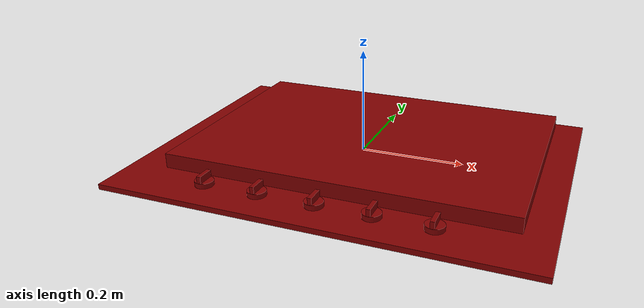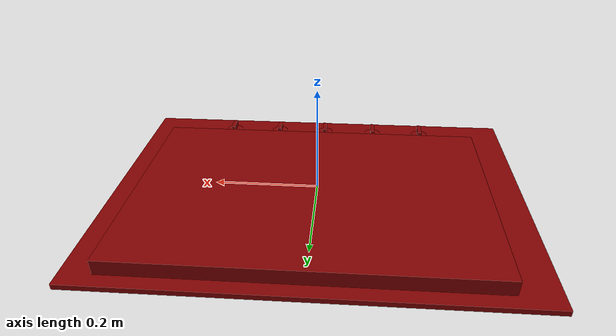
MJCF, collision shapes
<?xml version='1.0' encoding='UTF-8'?>
<mujoco model="model">
  <option timestep="0.002" gravity="0.0 0.0 -9.81"/>
  <compiler angle="radian"/>
  <asset>
    <mesh file="visuals/knob_center.obj" name="knob_center_vis"/>
    <mesh file="visuals/knob_front_left.obj" name="knob_front_left_vis"/>
    <mesh file="visuals/knob_front_right.obj" name="knob_front_right_vis"/>
    <mesh file="visuals/knob_rear_left.obj" name="knob_rear_left_vis"/>
    <mesh file="visuals/knob_rear_right.obj" name="knob_rear_right_vis"/>
    <mesh file="visuals/Body001.obj" name="Body001_vis"/>
    <texture file="visuals/T_BC001.png" name="Body001_material" type="2d"/>
    <material name="Body001_material" rgba="1 1 1 1.0" texture="Body001_material" shininess="0.2512328028678894" specular="1.5"/>
    <texture file="visuals/T_BC001.png" name="knob_center_material" type="2d"/>
    <material name="knob_center_material" rgba="1 1 1 1.0" texture="knob_center_material" shininess="0.2512328028678894" specular="1"/>
    <texture file="visuals/T_BC001.png" name="knob_front_left_material" type="2d"/>
    <material name="knob_front_left_material" rgba="1 1 1 1.0" texture="knob_front_left_material" shininess="0.2512328028678894" specular="1"/>
    <texture file="visuals/T_BC001.png" name="knob_front_right_material" type="2d"/>
    <material name="knob_front_right_material" rgba="1 1 1 1.0" texture="knob_front_right_material" shininess="0.2512328028678894" specular="1"/>
    <texture file="visuals/T_BC001.png" name="knob_rear_left_material" type="2d"/>
    <material name="knob_rear_left_material" rgba="1 1 1 1.0" texture="knob_rear_left_material" shininess="0.2512328028678894" specular="1"/>
    <texture file="visuals/T_BC001.png" name="knob_rear_right_material" type="2d"/>
    <material name="knob_rear_right_material" rgba="1 1 1 1.0" texture="knob_rear_right_material" shininess="0.2512328028678894" specular="1"/>
  </asset>
  <default>
    <default class="visual">
      <geom conaffinity="0" contype="0" group="1" type="mesh"/>
    </default>
    <default class="collision">
      <geom group="0" rgba="0.5 0 0 0.5"/>
    </default>
    <default class="spawn">
      <geom group="0" rgba="1 1 1 0.5" contype="0" conaffinity="0"/>
      <site group="0" rgba="1 1 1 0.5"/>
    </default>
    <default class="region">
      <geom group="1" conaffinity="0" contype="0" rgba="0 1 0 0"/>
    </default>
  </default>
  <worldbody>
    <body>
      <body name="object">
        <geom mesh="Body001_vis" type="mesh" solimp="0.998 0.998 0.001" solref="0.001 1" friction="0.95 0.3 0.1" class="visual" material="Body001_material"/>
        <geom class="collision" type="box" pos="0.00000002 -0.00000014 -0.01428871" size="0.39884355664253235 0.2969130575656891 0.005186832509934902" quat="1.0 0.0 0.0 0.0"/>
        <geom class="collision" type="box" pos="0.00806678 0.03811252 0.00518699" size="0.3344278037548065 0.23176425695419312 0.014288860373198986" quat="1.0 0.0 0.0 0.0"/>
        <body name="knob_center">
          <joint axis="0.0 0.0 1.0" pos="-0.00050422 -0.23192112 0.00569113" limited="true" name="knob_center_joint" range="0.0 3.141592653589793" type="hinge" damping="0.2" armature="0.01" frictionloss="1"/>
          <geom mesh="knob_center_vis" type="mesh" solimp="0.998 0.998 0.001" solref="0.001 1" friction="0.95 0.3 0.1" class="visual" material="knob_center_material"/>
          <geom class="collision" type="cylinder" pos="-0.00054916 -0.23202426 -0.00254780" size="0.017434313893318176 0.004886653274297714" quat="1.0 0.0 0.0 0.0" friction="100 0.5 0.01"/>
          <geom class="collision" type="box" pos="-0.00054916 -0.23210759 0.00893002" size="0.0039955079555511475 0.016683710739016533 0.006590714678168297" quat="1.0 0.0 0.0 0.0" name="knob_center_main" friction="100 0.5 0.01"/>
        </body>
        <body name="knob_front_left">
          <joint axis="0.0 0.0 1.0" pos="-0.21642241 -0.23192112 0.00569113" limited="true" name="knob_front_left_joint" range="0.0 3.141592653589793" type="hinge" damping="0.2" armature="0.01" frictionloss="1"/>
          <geom mesh="knob_front_left_vis" type="mesh" solimp="0.998 0.998 0.001" solref="0.001 1" friction="0.95 0.3 0.1" class="visual" material="knob_front_left_material"/>
          <geom class="collision" type="cylinder" pos="-0.21648192 -0.23202426 -0.00254780" size="0.017434317618608475 0.004886653274297714" quat="1.0 0.0 0.0 0.0" friction="100 0.5 0.01"/>
          <geom class="collision" type="box" pos="-0.21648189 -0.23210759 0.00893002" size="0.0039955140091478825 0.016683757305145264 0.006590725854039192" quat="1.0 0.0 0.0 0.0" name="knob_front_left_main" friction="100 0.5 0.01"/>
        </body>
        <body name="knob_front_right">
          <joint axis="0.0 0.0 1.0" pos="0.21000737 -0.23192112 0.00569113" limited="true" name="knob_front_right_joint" range="0.0 3.141592653589793" type="hinge" damping="0.2" armature="0.01" frictionloss="1"/>
          <geom mesh="knob_front_right_vis" type="mesh" solimp="0.998 0.998 0.001" solref="0.001 1" friction="0.95 0.3 0.1" class="visual" material="knob_front_right_material"/>
          <geom class="collision" type="box" pos="0.20999733 -0.23210759 0.00893002" size="0.003995509352535009 0.016683688387274742 0.006590708624571562" quat="1.0 0.0 0.0 0.0" name="knob_front_right_main" friction="100 0.5 0.01"/>
          <geom class="collision" type="cylinder" pos="0.20999736 -0.23202426 -0.00254780" size="0.017434310168027878 0.004886653274297714" quat="1.0 0.0 0.0 0.0" friction="100 0.5 0.01"/>
        </body>
        <body name="knob_rear_left">
          <joint axis="0.0 0.0 1.0" pos="-0.10954171 -0.23192112 0.00569113" limited="true" name="knob_rear_left_joint" range="0.0 3.141592653589793" type="hinge" damping="0.2" armature="0.01" frictionloss="1"/>
          <geom mesh="knob_rear_left_vis" type="mesh" solimp="0.998 0.998 0.001" solref="0.001 1" friction="0.95 0.3 0.1" class="visual" material="knob_rear_left_material"/>
          <geom class="collision" type="cylinder" pos="-0.10959394 -0.23202426 -0.00254780" size="0.017434312030673027 0.004886653274297714" quat="1.0 0.0 0.0 0.0" friction="100 0.5 0.01"/>
          <geom class="collision" type="box" pos="-0.10959394 -0.23210759 0.00893002" size="0.003995509818196297 0.016683734953403473 0.0065907202661037445" quat="1.0 0.0 0.0 0.0" name="knob_rear_left_main" friction="100 0.5 0.01"/>
        </body>
        <body name="knob_rear_right">
          <joint axis="0.0 0.0 1.0" pos="0.10372772 -0.23192112 0.00569113" limited="true" name="knob_rear_right_joint" range="0.0 3.141592653589793" type="hinge" damping="0.2" armature="0.01" frictionloss="1"/>
          <geom mesh="knob_rear_right_vis" type="mesh" solimp="0.998 0.998 0.001" solref="0.001 1" friction="0.95 0.3 0.1" class="visual" material="knob_rear_right_material"/>
          <geom class="collision" type="cylinder" pos="0.10354541 -0.23202426 -0.00254780" size="0.017434312030673027 0.004886653274297714" quat="1.0 0.0 0.0 0.0" friction="100 0.5 0.01"/>
          <geom class="collision" type="box" pos="0.10354541 -0.23210759 0.00893002" size="0.003995515871793032 0.016683779656887054 0.006590731907635927" quat="1.0 0.0 0.0 0.0" name="knob_rear_right_main" friction="100 0.5 0.01"/>
        </body>
        <site type="cylinder" rgba="0.3 0.4 1 0.5" size="0.06734978407621384 0.010999999940395355" pos="0.00643674 0.02504232 0.00167558" name="burner_on_center"/>
        <site type="cylinder" rgba="0.3 0.4 1 0.5" size="0.030252307653427124 0.010999999940395355" pos="-0.22918922 -0.08594300 0.00167558" name="burner_on_front_left"/>
        <site type="cylinder" rgba="0.3 0.4 1 0.5" size="0.04232050105929375 0.010999999940395355" pos="0.24054888 -0.08594300 0.00167558" name="burner_on_front_right"/>
        <site type="cylinder" rgba="0.3 0.4 1 0.5" size="0.042853355407714844 0.01099999900907278" pos="-0.22969209 0.16616172 0.00167558" name="burner_on_rear_left"/>
        <site type="cylinder" rgba="0.3 0.4 1 0.5" size="0.054467104375362396 0.01099999900907278" pos="0.24054888 0.16616167 0.00167558" name="burner_on_rear_right"/>
        <site type="cylinder" rgba="0.5 0 0 0" size="0.06734978407621384 4.999999873689376e-05" pos="0.00643674 0.02504232 0.01953010" name="burner_center_place_site"/>
        <site type="cylinder" rgba="0.5 0 0 0" size="0.030252307653427124 4.999999873689376e-05" pos="-0.22918922 -0.08594300 0.01953010" name="burner_front_left_place_site"/>
        <site type="cylinder" rgba="0.5 0 0 0" size="0.04232050105929375 4.999999873689376e-05" pos="0.24054888 -0.08594300 0.01953010" name="burner_front_right_place_site"/>
        <site type="cylinder" rgba="0.5 0 0 0" size="0.042853355407714844 4.999999873689376e-05" pos="-0.22969209 0.16616172 0.01953010" name="burner_rear_left_place_site"/>
        <site type="cylinder" rgba="0.5 0 0 0" size="0.054467104375362396 5.0000002374872565e-05" pos="0.24054888 0.16616167 0.01953010" name="burner_rear_right_place_site"/>
        <geom class="region" name="reg_main" type="box" pos="-9.999999994736442e-09 -1.5000000000431335e-07 -0.01428871" size="0.39988206 0.29793228000000005 0.00618718"/>
      </body>
    </body>
  </worldbody>
  <actuator>
    <motor name="knob_center_joint_actuator" joint="knob_center_joint" gear="10"/>
    <motor name="knob_front_left_joint_actuator" joint="knob_front_left_joint" gear="10"/>
    <motor name="knob_front_right_joint_actuator" joint="knob_front_right_joint" gear="10"/>
    <motor name="knob_rear_left_joint_actuator" joint="knob_rear_left_joint" gear="10"/>
    <motor name="knob_rear_right_joint_actuator" joint="knob_rear_right_joint" gear="10"/>
  </actuator>
</mujoco>
